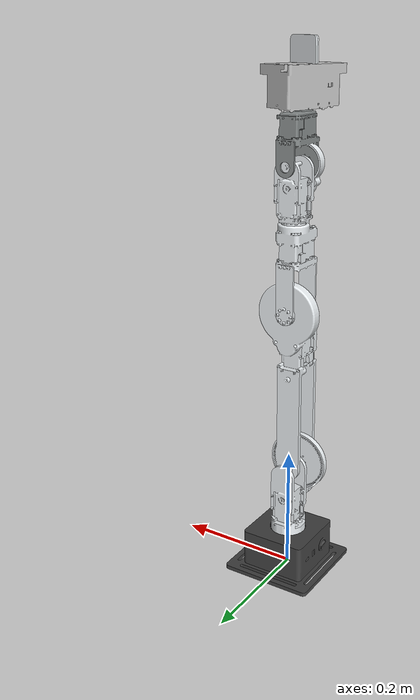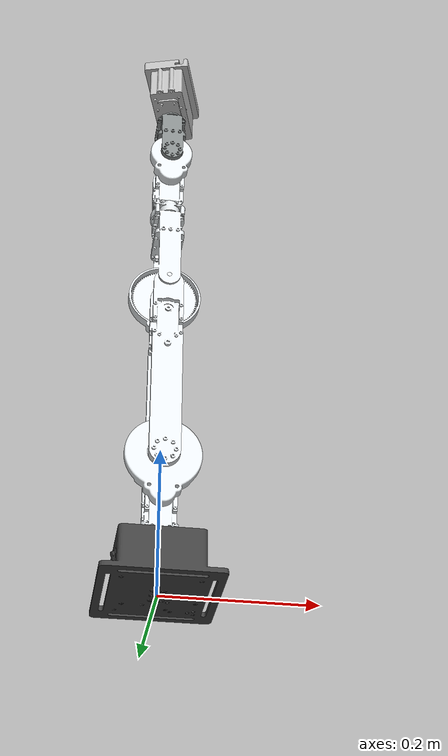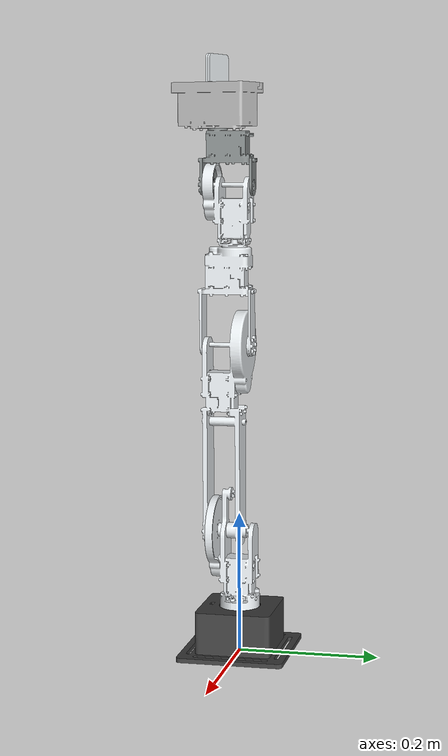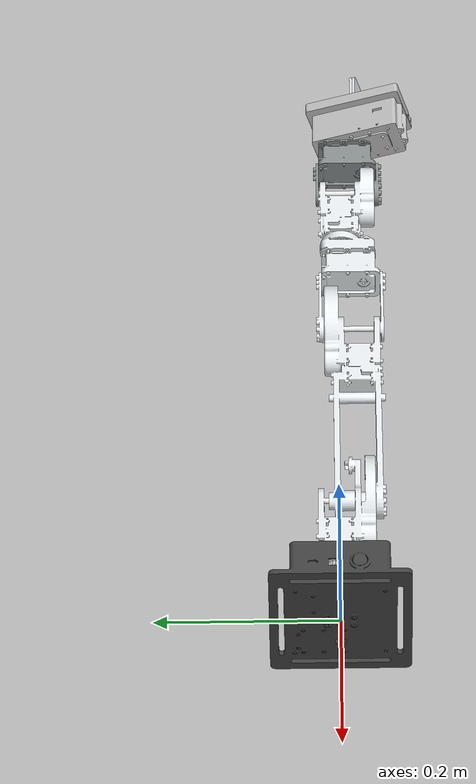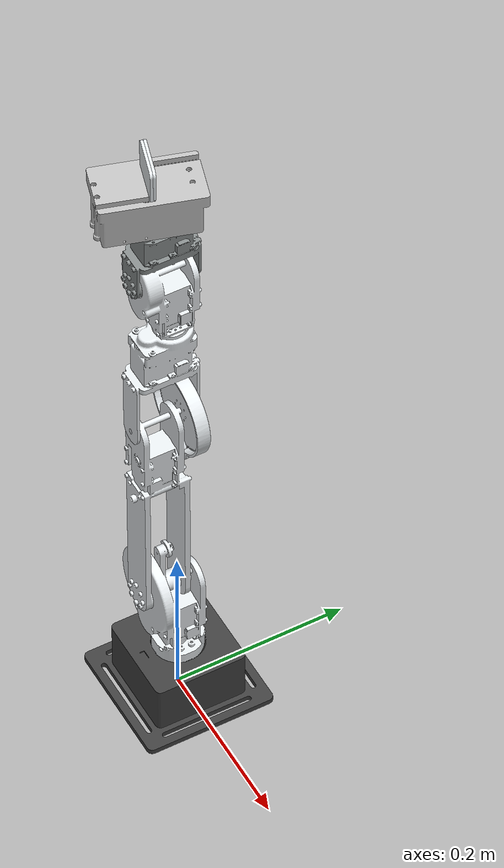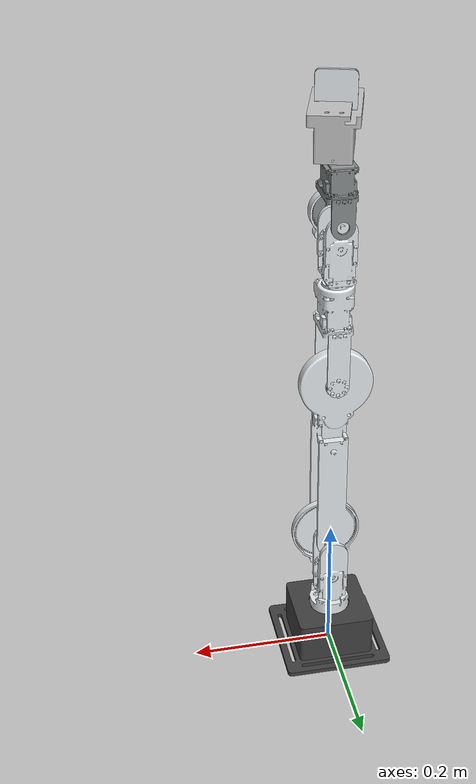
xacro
<?xml version="1.0"?>
<robot name="revel" xmlns:xacro="http://ros.org/wiki/xacro">

   <!-- Finger constants -->
   <xacro:property name="finger_standard" value="standard" />
   <xacro:property name="finger_tapped" value="standard_tapped" />
   <xacro:property name="finger_center" value="center"/>

   <!-- Set gripper's configurable options: finger type, gripper accessories, etc -->
   <xacro:property name="finger_type" value="${finger_standard}" />
   <xacro:property name="gripper_attachment" value="false"/>
   <xacro:property name="svenzva_vacuum_gripper_attachment" value="false" />
   <xacro:property name="svenzva_pen_gripper_attachment" value="true" />

   <xacro:property name="H_PI" value="1.570796"/>
   <xacro:property name="PI" value="3.14159"/>
   <!-- Set link name properties -->

   <!-- Set filepath constants -->
   <xacro:property name="finger_mesh_path" value="package://svenzva_description/meshes/finger_joint_2.STL" />

   <xacro:include filename="$(find svenzva_description)/robots/accessories/vacuum_holder.xacro" />
   <xacro:include filename="$(find svenzva_description)/robots/accessories/pen_holder.xacro" />
   <xacro:include filename="$(find svenzva_description)/robots/accessories/fingers.xacro" />

   <gazebo>
     <plugin name="gazebo_ros_control" filename="libgazebo_ros_control.so">
       <robotNamespace>/revel/</robotNamespace>
     </plugin>
   </gazebo>

  <link name="world"/>

  <link
    name="base_link">
    <inertial>
      <origin
        xyz="0.00316788473984359 0.00144654213217675 0.0163503481531875"
        rpy="0 0 0" />
      <mass
        value="0.673945611735726" />
      <inertia
        ixx="0.00108417285375602"
        ixy="-1.8840422640439E-05"
        ixz="-2.77034436629817E-05"
        iyy="0.00110167255395701"
        iyz="-9.55407578935953E-06"
        izz="0.00176149660426914" />
    </inertial>
    <visual>
      <origin
        xyz="0 0 0"
        rpy="0 0 0" />
      <geometry>
        <mesh
          filename="package://svenzva_description/textures/base_link.dae" />
      </geometry>
      <material
        name="">
        <color
          rgba="0.250980392156863 0.250980392156863 0.250980392156863 1" />
      </material>
    </visual>
    <collision>
      <origin
        xyz="0 0 0"
        rpy="0 0 0" />
      <geometry>
        <mesh
          filename="package://svenzva_description/meshes/base_link.STL" />
      </geometry>
    </collision>
  </link>

  <joint name="world_joint" type="fixed">
    <parent link="world"/>
    <child link="base_link"/>
  </joint>

  <link
    name="link_1">
    <inertial>
      <origin
        xyz="0.000394740619310651 -0.00394697747318002 0.0453185973462504"
        rpy="0 0 0" />
      <mass
        value="0.386092665970672" />
      <inertia
        ixx="0.000907442488265593"
        ixy="9.91871224876259E-09"
        ixz="-3.6939781644972E-08"
        iyy="0.000855772900574106"
        iyz="9.21169325994586E-05"
        izz="0.000187120993266731" />
    </inertial>
    <visual>
      <origin
        xyz="0 0 0"
        rpy="0 0 0" />
      <geometry>
        <mesh
          filename="package://svenzva_description/textures/link_1.dae" />
      </geometry>
      <material
        name="">
        <color
          rgba="0.898039215686275 0.917647058823529 0.929411764705882 1" />
      </material>
    </visual>
    <collision>
      <origin
        xyz="0 0 0"
        rpy="0 0 0" />
      <geometry>
        <mesh
          filename="package://svenzva_description/meshes/link_1.STL" />
      </geometry>
    </collision>
  </link>
  <joint
    name="joint_1"
    type="revolute">
    <origin
      xyz="0 0 0.064752"
      rpy="0 0 0" />
    <parent
      link="base_link" />
    <child
      link="link_1" />
    <axis
      xyz="0 0 -1" />
    <limit
      lower="-3.14"
      upper="3.14"
      effort="10"
      velocity="1" />
  </joint>

 <link
    name="link_2">
    <inertial>
      <origin
        xyz="-4.6967E-05 0.11408 0.016011"
        rpy="0 0 0" />
      <mass
        value="0.63194" />
      <inertia
        ixx="0.0063243"
        ixy="2.8676E-06"
        ixz="-5.7924E-07"
        iyy="0.00040505"
        iyz="0.00027822"
        izz="0.0061896" />
    </inertial>
    <visual>
      <origin
        xyz="0 0 0"
        rpy="0 0 0" />
      <geometry>
        <mesh
          filename="package://svenzva_description/textures/link_2.dae" />
      </geometry>
      <material
        name="">
        <color
          rgba="0.89804 0.91765 0.92941 1" />
      </material>
    </visual>
    <collision>
      <origin
        xyz="0 0 0"
        rpy="0 0 0" />
      <geometry>
        <mesh
          filename="package://svenzva_description/meshes/link_2.STL" />
      </geometry>
    </collision>
  </link>

<joint
    name="joint_2"
    type="revolute">
    <origin
      xyz="0.00039444 -0.0064686 0.11076"
      rpy="1.5708 0 0" />
    <parent
      link="link_1" />
    <child
      link="link_2" />
    <axis
      xyz="0 0 -1" />
    <limit
      lower="-1.5"
      upper="1.5"
      effort="10"
      velocity="1" />
  </joint>
  <link
    name="link_3">
    <inertial>
      <origin
        xyz="-2.1274E-06 0.051237 -0.015758"
        rpy="0 0 0" />
      <mass
        value="0.37014" />
      <inertia
        ixx="0.0012648"
        ixy="3.174E-08"
        ixz="2.0627E-08"
        iyy="0.00028079"
        iyz="-0.00016675"
        izz="0.0011912" />
    </inertial>
    <visual>
      <origin
        xyz="0 0 0"
        rpy="0 0 0" />
      <geometry>
        <mesh
          filename="package://svenzva_description/textures/link_3.dae" />
      </geometry>
      <material
        name="">
        <color
          rgba="0.89804 0.91765 0.92941 1" />
      </material>
    </visual>
    <collision>
      <origin
        xyz="0 0 0"
        rpy="0 0 0" />
      <geometry>
        <mesh
          filename="package://svenzva_description/meshes/link_3.STL" />
      </geometry>
    </collision>
  </link>

 <joint
    name="joint_3"
    type="revolute">
    <origin
      xyz="0 0.26625 0.014294"
      rpy="0 0 0" />
    <parent
      link="link_2" />
    <child
      link="link_3" />
    <axis
      xyz="0 0 1" />
    <limit
      lower="-2.5"
      upper="2.5"
      effort="10"
      velocity="1" />
  </joint>
  <link
    name="link_4">
    <inertial>
      <origin
        xyz="-3.78177057922539E-05 -0.00364125420498501 0.0447609638463843"
        rpy="0 0 0" />
      <mass
        value="0.208577727676899" />
      <inertia
        ixx="0.000277065539345918"
        ixy="1.68532231246742E-08"
        ixz="-2.40655665815155E-07"
        iyy="0.000239397752113429"
        iyz="1.85199498298306E-05"
        izz="8.5137482896374E-05" />
    </inertial>
    <visual>
      <origin
        xyz="0 0 0"
        rpy="0 0 0" />
      <geometry>
        <mesh
          filename="package://svenzva_description/textures/link_4.dae" />
      </geometry>
      <material
        name="">
        <color
          rgba="0.898039215686275 0.917647058823529 0.929411764705882 1" />
      </material>
    </visual>
    <collision>
      <origin
        xyz="0 0 0"
        rpy="0 0 0" />
      <geometry>
        <mesh
          filename="package://svenzva_description/meshes/link_4.STL" />
      </geometry>
    </collision>
  </link>

<joint
    name="joint_4"
    type="revolute">
    <origin
      xyz="0 0.13713 -0.015019"
      rpy="-1.5708 0 0" />
    <parent
      link="link_3" />
    <child
      link="link_4" />
    <axis
      xyz="0 0 -1" />
    <limit
      lower="-4.5"
      upper="2.5"
      effort="10"
      velocity="1" />
  </joint>
  <link
    name="link_5">
    <inertial>
      <origin
        xyz="-4.10966793018292E-06 -0.0119844325813299 0.0254510287985342"
        rpy="0 0 0" />
      <mass
        value="0.198143515414093" />
      <inertia
        ixx="0.000254862990258315"
        ixy="-7.36847584764268E-09"
        ixz="-2.04155550591897E-08"
        iyy="0.000174493924598589"
        iyz="-4.40919139889134E-05"
        izz="0.000127265974156123" />
    </inertial>
    <visual>
      <origin
        xyz="0 0 0"
        rpy="0 0 0" />
      <geometry>
        <mesh
          filename="package://svenzva_description/textures/link_5.dae" />
      </geometry>
      <material
        name="">
        <color
          rgba="0.529411764705882 0.549019607843137 0.549019607843137 1" />
      </material>
    </visual>
    <collision>
      <origin
        xyz="0 0 0"
        rpy="0 0 0" />
      <geometry>
        <mesh
          filename="package://svenzva_description/meshes/link_5.STL" />
      </geometry>
    </collision>
  </link>

 <joint
    name="joint_5"
    type="revolute">
    <origin
      xyz="0 -0.0040438 0.086925"
      rpy="0 0 0" />
    <parent
      link="link_4" />
    <child
      link="link_5" />
    <axis
      xyz="0 1 0" />
    <limit
      lower="-1.8"
      upper="1.8"
      effort="10"
      velocity="1" />
  </joint>
  <link
    name="link_6">
    <inertial>
      <origin
        xyz="1.70870985564525E-05 0.00518372417730809 -0.0301873871981205"
        rpy="0 0 3.14159" />
      <mass
        value="0.217466355310719" />
      <inertia
        ixx="0.000283317945614306"
        ixy="4.01931843139719E-06"
        ixz="2.01137426532614E-08"
        iyy="0.000144510928899331"
        iyz="-1.12427876997159E-05"
        izz="0.000246869181878746" />
    </inertial>
    <visual>
      <origin
        xyz="0 0 0"
        rpy="0 0 3.14159" />
      <geometry>
        <mesh
          filename="package://svenzva_description/textures/link_6.dae" />
      </geometry>
      <material
        name="">
        <color
          rgba="0.752941176470588 0.752941176470588 0.752941176470588 1" />
      </material>
    </visual>
    <collision>
      <origin
        xyz="0 0 0"
        rpy="0 0 0" />
      <geometry>
        <mesh
          filename="package://svenzva_description/meshes/link_6.STL" />
      </geometry>
    </collision>
  </link>

 <joint
    name="joint_6"
    type="revolute">
    <origin
      xyz="0 -0.019119 0.082"
      rpy="3.1416 0 3.1416" />
    <parent
      link="link_5" />
    <child
      link="link_6" />
    <axis
      xyz="0 0 -1" />
    <limit
      lower="0.2"
      upper="5.5"
      effort="10"
      velocity="1" />
  </joint>

  <xacro:unless value="${gripper_attachment}">
      <xacro:revel_finger parent="link_6" finger_number="1" mesh_path="package://svenzva_description/meshes/accessories/finger_${finger_type}.STL">
          <origin xyz="0 0 -0.003175" rpy="0 0 ${H_PI}" />
          <axis xyz="0 -1 0" />
      </xacro:revel_finger>

      <xacro:revel_finger parent="link_6" finger_number="2" mesh_path="package://svenzva_description/meshes/accessories/finger_${finger_type}.STL">
          <origin xyz="0 0 -0.003175" rpy="0 0 -${H_PI}" />
          <axis xyz="0 1 0" />
      </xacro:revel_finger>
  </xacro:unless>

  <xacro:if value="${gripper_attachment}">
      <xacro:if value="${svenzva_pen_gripper_attachment}">
        <xacro:pen_holder parent="link_6">
            <origin xyz="0 0 -0.003175" rpy="0 0 -${H_PI}" />
        </xacro:pen_holder>
      </xacro:if>
      <xacro:if value="${svenzva_vacuum_gripper_attachment}">
          <xacro:vacuum_holder parent="link_6">
            <origin xyz="0 0 -0.003175" rpy="0 0 -${H_PI}" />
        </xacro:vacuum_holder>
      </xacro:if>
  </xacro:if>

  <link name="ee_link"> </link>
  <joint name="ee_joint" type="fixed">
    <parent link="link_6"/>
    <child link="ee_link"/>
    <origin xyz="0 0 -0.05" rpy="3.14159 0 0"/>
  </joint>

  <transmission name="joint_1_trans">
    <type>transmission_interface/SimpleTransmission</type>
    <joint name="joint_1">
      <hardwareInterface>EffortJointInterface</hardwareInterface>
    </joint>
    <actuator name="motor_1">
      <mechanicalReduction>4</mechanicalReduction>
      <hardwareInterface>EffortJointInterface</hardwareInterface>
    </actuator>
  </transmission>

  <transmission name="joint_2_trans">
    <type>transmission_interface/SimpleTransmission</type>
    <joint name="joint_2">
      <hardwareInterface>EffortJointInterface</hardwareInterface>
    </joint>
  <actuator name="motor_2">
    <mechanicalReduction>6</mechanicalReduction>
    <hardwareInterface>EffortJointInterface</hardwareInterface>
  </actuator>
  </transmission>

  <transmission name="joint_3_trans">
    <type>transmission_interface/SimpleTransmission</type>
    <joint name="joint_3">
      <hardwareInterface>EffortJointInterface</hardwareInterface>
    </joint>
  <actuator name="motor_3">
    <mechanicalReduction>6</mechanicalReduction>
    <hardwareInterface>EffortJointInterface</hardwareInterface>
  </actuator>
  </transmission>

  <transmission name="joint_4_trans">
    <type>transmission_interface/SimpleTransmission</type>
    <joint name="joint_4">
      <hardwareInterface>EffortJointInterface</hardwareInterface>
    </joint>
  <actuator name="motor_4">
    <mechanicalReduction>1</mechanicalReduction>
    <hardwareInterface>EffortJointInterface</hardwareInterface>
  </actuator>
  </transmission>

  <transmission name="joint_5_trans">
    <type>transmission_interface/SimpleTransmission</type>
    <joint name="joint_5">
      <hardwareInterface>EffortJointInterface</hardwareInterface>
    </joint>
  <actuator name="motor_5">
    <mechanicalReduction>4</mechanicalReduction>
    <hardwareInterface>EffortJointInterface</hardwareInterface>
  </actuator>
  </transmission>

 <transmission name="joint_6_trans">
    <type>transmission_interface/SimpleTransmission</type>
    <joint name="joint_6">
      <hardwareInterface>EffortJointInterface</hardwareInterface>
    </joint>
    <actuator name="motor_6">
    <mechanicalReduction>1</mechanicalReduction>
    <hardwareInterface>EffortJointInterface</hardwareInterface>
     </actuator>
  </transmission>

</robot>

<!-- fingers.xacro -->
<robot xmlns:xacro="http://ros.org/wiki/xacro" name="revel_finger">
    <xacro:macro name="revel_finger" params="parent finger_number mesh_path *origin *axis">

        <link name="finger_link_${finger_number}">
		<inertial>
			<xacro:insert_block name="origin" />
			<mass value="0.0220307791071739" />
			<inertia
				ixx="9.08331950596468E-06"
				ixy="-2.05394082888464E-06"
				ixz="-2.23772944669454E-06"
				iyy="1.04239718244321E-05"
				iyz="-2.75990314800171E-06"
				izz="9.60841591398502E-06" />
		</inertial>
        <visual>
		  <xacro:insert_block name="origin" />
		  <geometry>
			<mesh
                filename="${mesh_path}"/>
		  </geometry>
		  <material
			name="">
			<color
			  rgba="0.898039215686275 0.917647058823529 0.929411764705882 1" />
		  </material>
		</visual>
		<collision>
		  <origin
			xyz="0 0 0"
			rpy="0 0 0" />
		  <geometry>
			<mesh
                filename="${mesh_path}" />
		  </geometry>
		</collision>
	  </link>

	  <joint name="finger_joint_${finger_number}" type="prismatic">
		<origin
		  xyz="0 0 -0.052002"
		  rpy="-3.1416 0 3.1416" />
		<parent
            link="${parent}" />
		<child
            link="finger_link_${finger_number}" />
		<xacro:insert_block name="axis" />
		<limit
		  lower="0"
		  upper="0.05"
		  effort="100"
		  velocity="10" />
	  </joint>
    </xacro:macro>
</robot>
